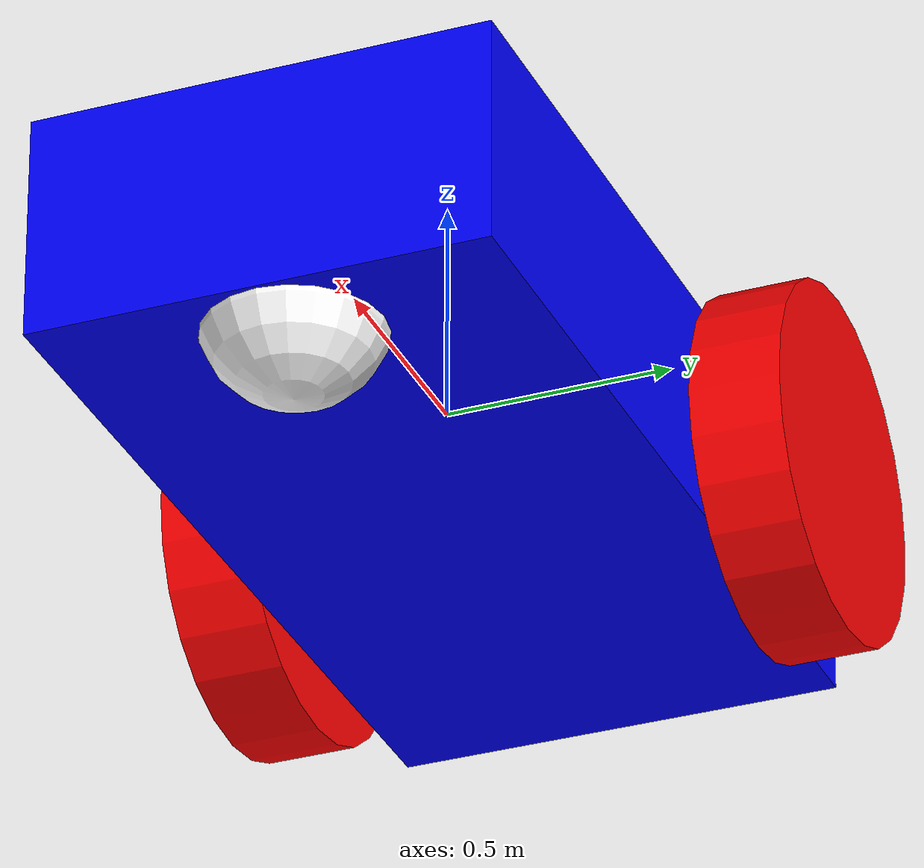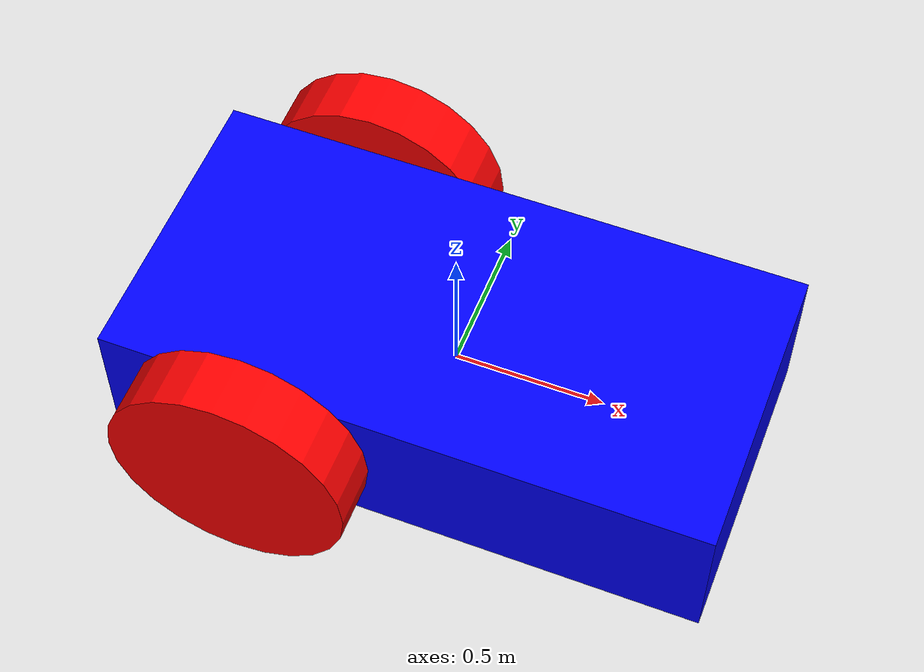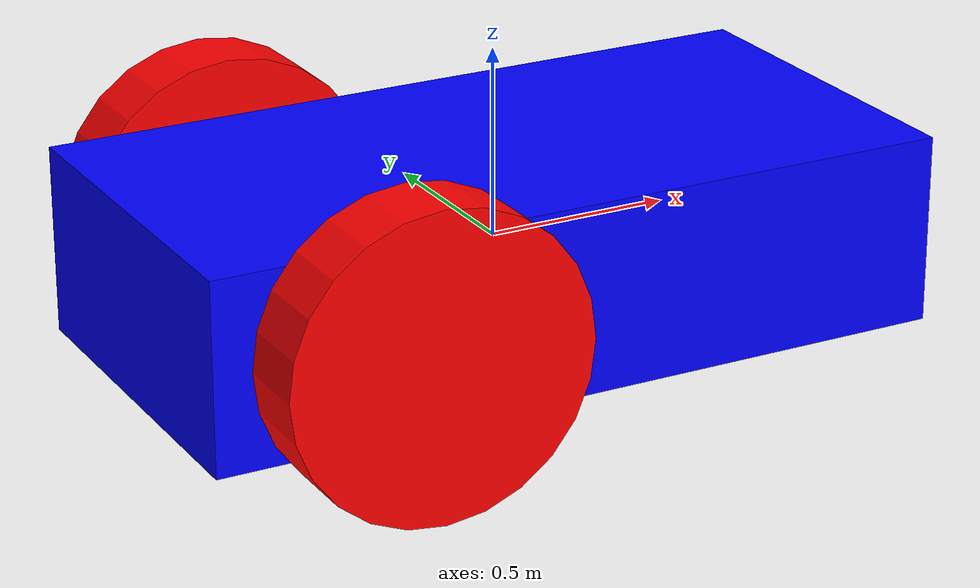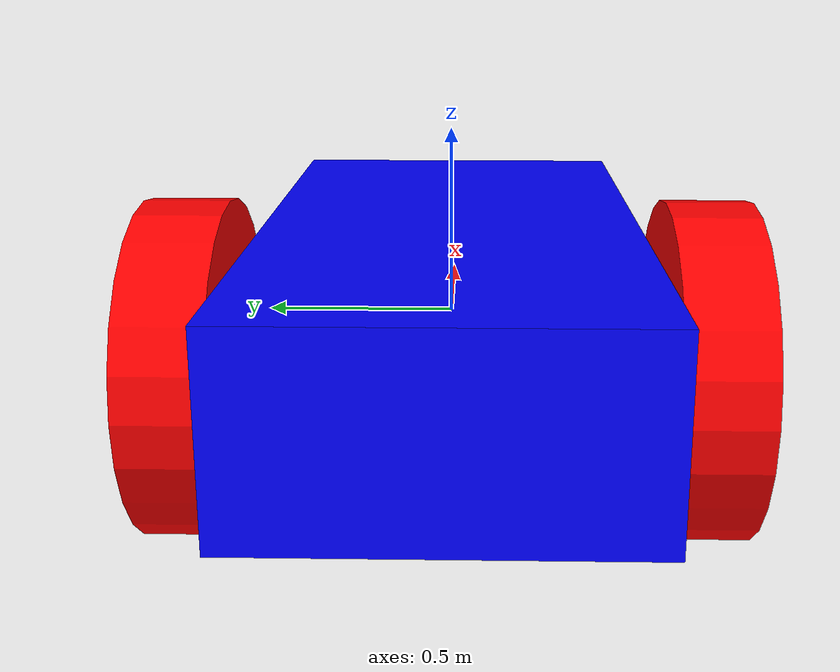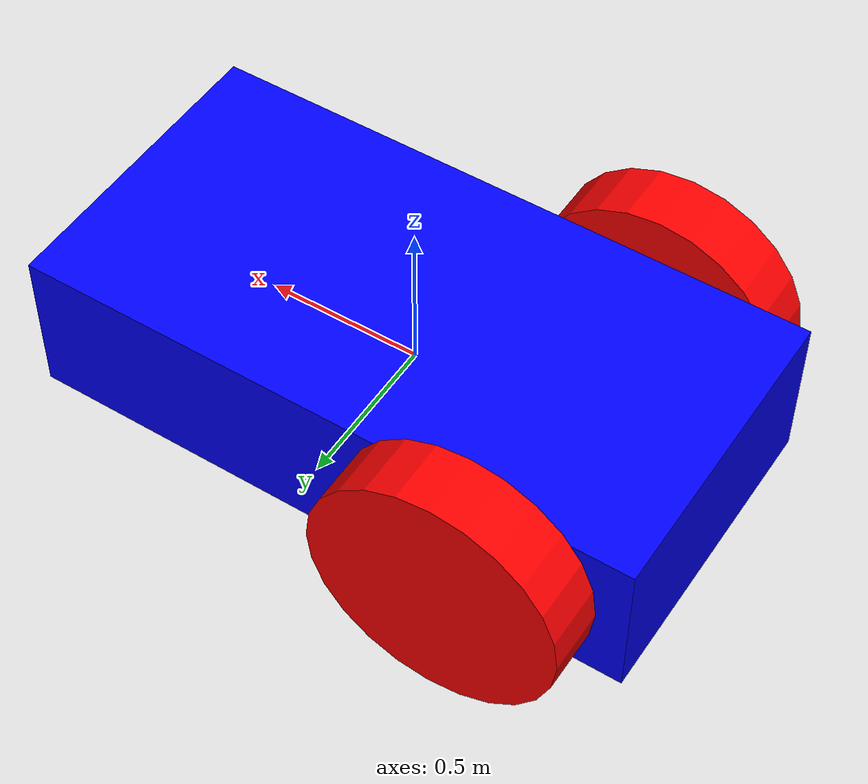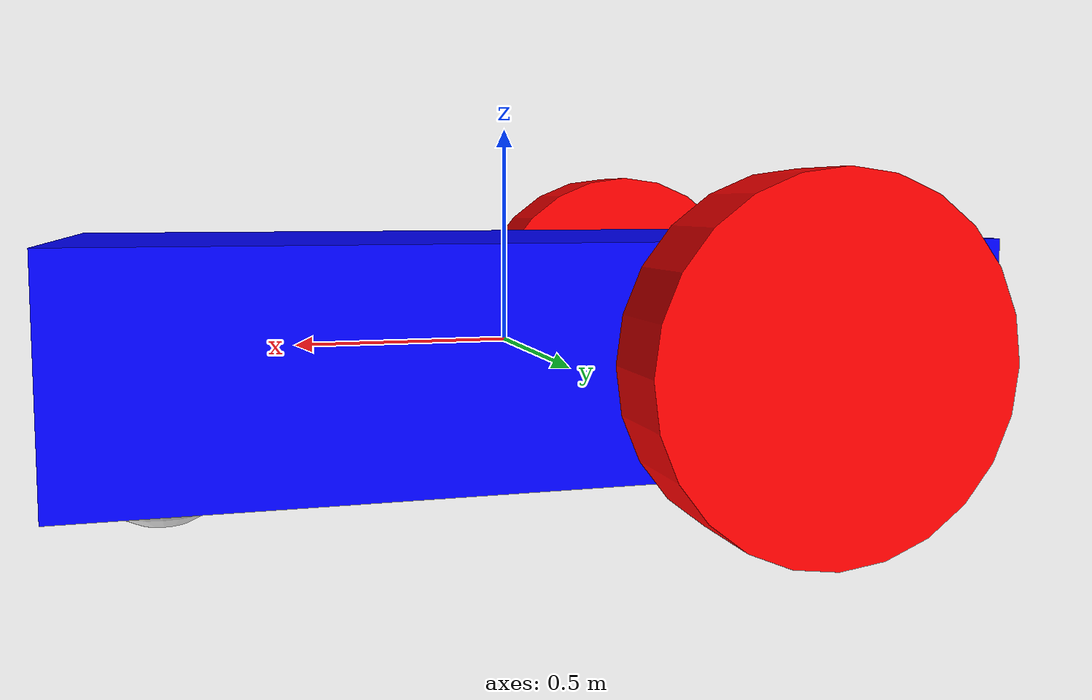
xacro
<?xml version="1.0"?>
<robot name="vehicle_blue" xmlns:xacro="http://www.ros.org/wiki/xacro">

  <xacro:property name="chassis_x" value="2.0"/>
  <xacro:property name="chassis_y" value="1.0"/>
  <xacro:property name="chassis_z" value="0.5"/>
  <xacro:property name="wheel_r"   value="0.4"/>
  <xacro:property name="wheel_w"   value="0.2"/>
  <xacro:property name="wheel_sep" value="1.2"/>
  <xacro:property name="caster_r"  value="0.2"/>

  <material name="blue"><color rgba="0 0 1 1"/></material>
  <material name="red"><color rgba="1 0 0 1"/></material>
  <material name="white"><color rgba="1 1 1 1"/></material>

  <!-- base_link == the SDF 'chassis' link; the 0.5 0 0.4 model offset is gone,
       placement is now the spawn pose (z must be >= wheel radius) -->
  <link name="base_link">
    <inertial>
      <mass value="1.14395"/>
      <inertia ixx="0.095329" ixy="0" ixz="0" iyy="0.381317" iyz="0" izz="0.476646"/>
    </inertial>
    <visual>
      <geometry><box size="${chassis_x} ${chassis_y} ${chassis_z}"/></geometry>
      <material name="blue"/>
    </visual>
    <collision>
      <geometry><box size="${chassis_x} ${chassis_y} ${chassis_z}"/></geometry>
    </collision>
  </link>

  <xacro:macro name="wheel" params="side reflect">
    <link name="${side}_wheel">
      <inertial>
        <mass value="1"/>
        <inertia ixx="0.043333" ixy="0" ixz="0" iyy="0.043333" iyz="0" izz="0.08"/>
      </inertial>
      <visual>
        <geometry><cylinder radius="${wheel_r}" length="${wheel_w}"/></geometry>
        <material name="red"/>
      </visual>
      <collision>
        <geometry><cylinder radius="${wheel_r}" length="${wheel_w}"/></geometry>
      </collision>
    </link>
    <!-- rpy rotates the cylinder onto the Y axis, so the spin axis is local Z -->
    <joint name="${side}_wheel_joint" type="continuous">
      <parent link="base_link"/>
      <child link="${side}_wheel"/>
      <origin xyz="-0.5 ${reflect * wheel_sep / 2} 0" rpy="-1.5707 0 0"/>
      <axis xyz="0 0 1"/>
    </joint>
  </xacro:macro>

  <xacro:wheel side="left"  reflect="1"/>
  <xacro:wheel side="right" reflect="-1"/>

  <link name="caster">
    <inertial>
      <mass value="1"/>
      <inertia ixx="0.016" ixy="0" ixz="0" iyy="0.016" iyz="0" izz="0.016"/>
    </inertial>
    <visual>
      <geometry><sphere radius="${caster_r}"/></geometry>
      <material name="white"/>
    </visual>
    <collision>
      <geometry><sphere radius="${caster_r}"/></geometry>
    </collision>
  </link>
  <joint name="caster_joint" type="fixed">
    <parent link="base_link"/>
    <child link="caster"/>
    <origin xyz="0.8 0 -0.2" rpy="0 0 0"/>
  </joint>

  <link name="lidar_link"/>
  <joint name="lidar_joint" type="fixed">
    <parent link="base_link"/>
    <child link="lidar_link"/>
    <origin xyz="0 0 0.3" rpy="0 0 0"/>
  </joint>

  <gazebo reference="caster">
    <mu1>0.0</mu1>
    <mu2>0.0</mu2>
  </gazebo>

  <gazebo reference="lidar_link">
    <sensor name="lidar" type="gpu_lidar">
      <topic>scan</topic>
      <gz_frame_id>base_link</gz_frame_id>
      <update_rate>10</update_rate>
      <always_on>1</always_on>
      <visualize>true</visualize>
      <lidar>
        <scan>
          <horizontal>
            <samples>640</samples>
            <resolution>1</resolution>
            <min_angle>-3.14159</min_angle>
            <max_angle>3.14159</max_angle>
          </horizontal>
        </scan>
        <range><min>0.3</min><max>12.0</max><resolution>0.01</resolution></range>
        <noise><type>gaussian</type><mean>0.0</mean><stddev>0.01</stddev></noise>
      </lidar>
    </sensor>
  </gazebo>

  <gazebo>
    <plugin filename="gz-sim-diff-drive-system" name="gz::sim::systems::DiffDrive">
      <left_joint>left_wheel_joint</left_joint>
      <right_joint>right_wheel_joint</right_joint>
      <wheel_separation>${wheel_sep}</wheel_separation>
      <wheel_radius>${wheel_r}</wheel_radius>
      <odom_publish_frequency>30</odom_publish_frequency>
      <topic>cmd_vel</topic>
      <odom_topic>odom</odom_topic>
      <tf_topic>tf</tf_topic>
      <frame_id>odom</frame_id>
      <child_frame_id>base_link</child_frame_id>
    </plugin>
  </gazebo>

</robot>
